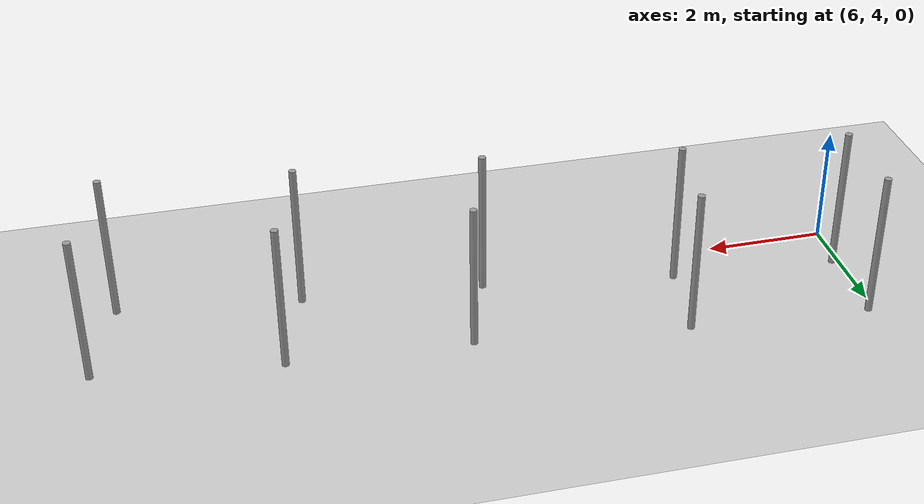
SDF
<sdf version="1.6">
 <world name="default">
  <light name="sun" type="directional">
   <pose>0 0 10 0 -0 0</pose>
   <diffuse>0.8 0.8 0.8 1</diffuse>
   <specular>0.1 0.1 0.1 1</specular>
   <attenuation>
    <range>1000</range>
    <constant>0.9</constant>
    <linear>0.01</linear>
    <quadratic>0.001</quadratic>
   </attenuation>
   <direction>-0.5 0.5 -1</direction>
  </light>
  <model name="ground_plane">
   <static>1</static>
   <link name="link">
    <collision name="collision">
     <geometry><plane><normal>0 0 1</normal><size>100 100</size></plane></geometry>
     <surface><friction><ode><mu>100</mu><mu2>50</mu2></ode></friction></surface>
    </collision>
    <visual name="visual">
     <cast_shadows>0</cast_shadows>
     <geometry><plane><normal>0 0 1</normal><size>100 100</size></plane></geometry>
     <material>
      <script><uri>file://media/materials/scripts/gazebo.material</uri><name>Gazebo/Grey</name></script>
     </material>
    </visual>
   </link>
  </model>
  <gravity>0 0 -9.8</gravity>
  <magnetic_field>6e-06 2.3e-05 -4.2e-05</magnetic_field>
  <atmosphere type="adiabatic"/>
  <physics name="default_physics" default="0" type="ode">
   <max_step_size>0.001</max_step_size>
   <real_time_factor>1</real_time_factor>
   <real_time_update_rate>1000</real_time_update_rate>
  </physics>
  <scene><ambient>0.4 0.4 0.4 1</ambient><background>0.7 0.7 0.7 1</background><shadows>1</shadows></scene>
  <spherical_coordinates>
   <surface_model>EARTH_WGS84</surface_model>
   <latitude_deg>0</latitude_deg>
   <longitude_deg>0</longitude_deg>
   <elevation>0</elevation>
   <heading_deg>0</heading_deg>
  </spherical_coordinates>
  <model name="pole_1">
   <link name="link_0">
    <inertial>
     <mass>0.0364582</mass>
     <inertia>
      <ixx>0.00312124</ixx>
      <ixy>0</ixy>
      <ixz>0</ixz>
      <iyy>0.00312124</iyy>
      <iyz>0</iyz>
      <izz>0.00016615</izz>
     </inertia>
    </inertial>
    <visual name="visual">
     <geometry><cylinder><radius>0.06</radius><length>2.5</length></cylinder></geometry>
     <material>
      <lighting>1</lighting>
      <script><uri>file://media/materials/scripts/gazebo.material</uri><name>Gazebo/Grey</name></script>
      <ambient>0.3 0.3 0.3 1</ambient>
      <diffuse>0.7 0.7 0.7 1</diffuse>
      <specular>0.01 0.01 0.01 1</specular>
      <emissive>0 0 0 1</emissive>
      <shader type="vertex"><normal_map>__default__</normal_map></shader>
     </material>
    </visual>
    <collision name="collision">
     <geometry><cylinder><radius>0.06</radius><length>2.5</length></cylinder></geometry>
     <surface>
      <friction>
       <ode><mu>1</mu><mu2>1</mu2><fdir1>0 0 0</fdir1><slip1>0</slip1><slip2>0</slip2></ode>
       <torsional>
        <coefficient>1</coefficient>
        <patch_radius>0</patch_radius>
        <surface_radius>0</surface_radius>
        <use_patch_radius>1</use_patch_radius>
        <ode><slip>0</slip></ode>
       </torsional>
      </friction>
      <bounce><restitution_coefficient>0</restitution_coefficient><threshold>1e+06</threshold></bounce>
      <contact>
       <collide_without_contact>0</collide_without_contact>
       <collide_without_contact_bitmask>1</collide_without_contact_bitmask>
       <collide_bitmask>1</collide_bitmask>
       <ode>
        <soft_cfm>0</soft_cfm>
        <soft_erp>0.2</soft_erp>
        <kp>1e+13</kp>
        <kd>1</kd>
        <max_vel>0.01</max_vel>
        <min_depth>0</min_depth>
       </ode>
       <bullet>
        <split_impulse>1</split_impulse>
        <split_impulse_penetration_threshold>-0.01</split_impulse_penetration_threshold>
        <soft_cfm>0</soft_cfm>
        <soft_erp>0.2</soft_erp>
        <kp>1e+13</kp>
        <kd>1</kd>
       </bullet>
      </contact>
     </surface>
    </collision>
   </link>
   <static>0</static>
   <pose>6.10679 4.85517 1.25 -1e-06 -1e-06 -0.039728</pose>
  </model>
  <model name="pole_2">
   <link name="link_0">
    <inertial>
     <mass>0.0364582</mass>
     <inertia>
      <ixx>0.00312124</ixx>
      <ixy>0</ixy>
      <ixz>0</ixz>
      <iyy>0.00312124</iyy>
      <iyz>0</iyz>
      <izz>0.00016615</izz>
     </inertia>
    </inertial>
    <visual name="visual">
     <geometry><cylinder><radius>0.06</radius><length>2.5</length></cylinder></geometry>
     <material>
      <lighting>1</lighting>
      <script><uri>file://media/materials/scripts/gazebo.material</uri><name>Gazebo/Grey</name></script>
      <ambient>0.3 0.3 0.3 1</ambient>
      <diffuse>0.7 0.7 0.7 1</diffuse>
      <specular>0.01 0.01 0.01 1</specular>
      <emissive>0 0 0 1</emissive>
      <shader type="vertex"><normal_map>__default__</normal_map></shader>
     </material>
    </visual>
    <collision name="collision">
     <geometry><cylinder><radius>0.06</radius><length>2.5</length></cylinder></geometry>
     <surface>
      <friction>
       <ode><mu>1</mu><mu2>1</mu2><fdir1>0 0 0</fdir1><slip1>0</slip1><slip2>0</slip2></ode>
       <torsional>
        <coefficient>1</coefficient>
        <patch_radius>0</patch_radius>
        <surface_radius>0</surface_radius>
        <use_patch_radius>1</use_patch_radius>
        <ode><slip>0</slip></ode>
       </torsional>
      </friction>
      <bounce><restitution_coefficient>0</restitution_coefficient><threshold>1e+06</threshold></bounce>
      <contact>
       <collide_without_contact>0</collide_without_contact>
       <collide_without_contact_bitmask>1</collide_without_contact_bitmask>
       <collide_bitmask>1</collide_bitmask>
       <ode>
        <soft_cfm>0</soft_cfm>
        <soft_erp>0.2</soft_erp>
        <kp>1e+13</kp>
        <kd>1</kd>
        <max_vel>0.01</max_vel>
        <min_depth>0</min_depth>
       </ode>
       <bullet>
        <split_impulse>1</split_impulse>
        <split_impulse_penetration_threshold>-0.01</split_impulse_penetration_threshold>
        <soft_cfm>0</soft_cfm>
        <soft_erp>0.2</soft_erp>
        <kp>1e+13</kp>
        <kd>1</kd>
       </bullet>
      </contact>
     </surface>
    </collision>
   </link>
   <static>0</static>
   <pose>6.10642 6.31821 1.25 -1e-06 1e-06 -0.046155</pose>
  </model>
  <model name="pole_5">
   <link name="link_0">
    <inertial>
     <mass>0.0364582</mass>
     <inertia>
      <ixx>0.00312124</ixx>
      <ixy>0</ixy>
      <ixz>0</ixz>
      <iyy>0.00312124</iyy>
      <iyz>0</iyz>
      <izz>0.00016615</izz>
     </inertia>
    </inertial>
    <visual name="visual">
     <geometry><cylinder><radius>0.06</radius><length>2.5</length></cylinder></geometry>
     <material>
      <lighting>1</lighting>
      <script><uri>file://media/materials/scripts/gazebo.material</uri><name>Gazebo/Grey</name></script>
      <ambient>0.3 0.3 0.3 1</ambient>
      <diffuse>0.7 0.7 0.7 1</diffuse>
      <specular>0.01 0.01 0.01 1</specular>
      <emissive>0 0 0 1</emissive>
      <shader type="vertex"><normal_map>__default__</normal_map></shader>
     </material>
    </visual>
    <collision name="collision">
     <geometry><cylinder><radius>0.06</radius><length>2.5</length></cylinder></geometry>
     <surface>
      <friction>
       <ode><mu>1</mu><mu2>1</mu2><fdir1>0 0 0</fdir1><slip1>0</slip1><slip2>0</slip2></ode>
       <torsional>
        <coefficient>1</coefficient>
        <patch_radius>0</patch_radius>
        <surface_radius>0</surface_radius>
        <use_patch_radius>1</use_patch_radius>
        <ode><slip>0</slip></ode>
       </torsional>
      </friction>
      <bounce><restitution_coefficient>0</restitution_coefficient><threshold>1e+06</threshold></bounce>
      <contact>
       <collide_without_contact>0</collide_without_contact>
       <collide_without_contact_bitmask>1</collide_without_contact_bitmask>
       <collide_bitmask>1</collide_bitmask>
       <ode>
        <soft_cfm>0</soft_cfm>
        <soft_erp>0.2</soft_erp>
        <kp>1e+13</kp>
        <kd>1</kd>
        <max_vel>0.01</max_vel>
        <min_depth>0</min_depth>
       </ode>
       <bullet>
        <split_impulse>1</split_impulse>
        <split_impulse_penetration_threshold>-0.01</split_impulse_penetration_threshold>
        <soft_cfm>0</soft_cfm>
        <soft_erp>0.2</soft_erp>
        <kp>1e+13</kp>
        <kd>1</kd>
       </bullet>
      </contact>
     </surface>
    </collision>
   </link>
   <static>0</static>
   <pose>8.90684 4.65536 1.24999 0 -1e-06 -0.039716</pose>
  </model>
  <model name="pole_6">
   <link name="link_0">
    <inertial>
     <mass>0.0364582</mass>
     <inertia>
      <ixx>0.00312124</ixx>
      <ixy>0</ixy>
      <ixz>0</ixz>
      <iyy>0.00312124</iyy>
      <iyz>0</iyz>
      <izz>0.00016615</izz>
     </inertia>
    </inertial>
    <visual name="visual">
     <geometry><cylinder><radius>0.06</radius><length>2.5</length></cylinder></geometry>
     <material>
      <lighting>1</lighting>
      <script><uri>file://media/materials/scripts/gazebo.material</uri><name>Gazebo/Grey</name></script>
      <ambient>0.3 0.3 0.3 1</ambient>
      <diffuse>0.7 0.7 0.7 1</diffuse>
      <specular>0.01 0.01 0.01 1</specular>
      <emissive>0 0 0 1</emissive>
      <shader type="vertex"><normal_map>__default__</normal_map></shader>
     </material>
    </visual>
    <collision name="collision">
     <geometry><cylinder><radius>0.06</radius><length>2.5</length></cylinder></geometry>
     <surface>
      <friction>
       <ode><mu>1</mu><mu2>1</mu2><fdir1>0 0 0</fdir1><slip1>0</slip1><slip2>0</slip2></ode>
       <torsional>
        <coefficient>1</coefficient>
        <patch_radius>0</patch_radius>
        <surface_radius>0</surface_radius>
        <use_patch_radius>1</use_patch_radius>
        <ode><slip>0</slip></ode>
       </torsional>
      </friction>
      <bounce><restitution_coefficient>0</restitution_coefficient><threshold>1e+06</threshold></bounce>
      <contact>
       <collide_without_contact>0</collide_without_contact>
       <collide_without_contact_bitmask>1</collide_without_contact_bitmask>
       <collide_bitmask>1</collide_bitmask>
       <ode>
        <soft_cfm>0</soft_cfm>
        <soft_erp>0.2</soft_erp>
        <kp>1e+13</kp>
        <kd>1</kd>
        <max_vel>0.01</max_vel>
        <min_depth>0</min_depth>
       </ode>
       <bullet>
        <split_impulse>1</split_impulse>
        <split_impulse_penetration_threshold>-0.01</split_impulse_penetration_threshold>
        <soft_cfm>0</soft_cfm>
        <soft_erp>0.2</soft_erp>
        <kp>1e+13</kp>
        <kd>1</kd>
       </bullet>
      </contact>
     </surface>
    </collision>
   </link>
   <static>0</static>
   <pose>9.10678 6.1006 1.25 -1e-06 1e-06 -0.05973</pose>
  </model>
  <model name="pole_9">
   <link name="link_0">
    <inertial>
     <mass>0.0364582</mass>
     <inertia>
      <ixx>0.00312124</ixx>
      <ixy>0</ixy>
      <ixz>0</ixz>
      <iyy>0.00312124</iyy>
      <iyz>0</iyz>
      <izz>0.00016615</izz>
     </inertia>
    </inertial>
    <visual name="visual">
     <geometry><cylinder><radius>0.06</radius><length>2.5</length></cylinder></geometry>
     <material>
      <lighting>1</lighting>
      <script><uri>file://media/materials/scripts/gazebo.material</uri><name>Gazebo/Grey</name></script>
      <ambient>0.3 0.3 0.3 1</ambient>
      <diffuse>0.7 0.7 0.7 1</diffuse>
      <specular>0.01 0.01 0.01 1</specular>
      <emissive>0 0 0 1</emissive>
      <shader type="vertex"><normal_map>__default__</normal_map></shader>
     </material>
    </visual>
    <collision name="collision">
     <geometry><cylinder><radius>0.06</radius><length>2.5</length></cylinder></geometry>
     <surface>
      <friction>
       <ode><mu>1</mu><mu2>1</mu2><fdir1>0 0 0</fdir1><slip1>0</slip1><slip2>0</slip2></ode>
       <torsional>
        <coefficient>1</coefficient>
        <patch_radius>0</patch_radius>
        <surface_radius>0</surface_radius>
        <use_patch_radius>1</use_patch_radius>
        <ode><slip>0</slip></ode>
       </torsional>
      </friction>
      <bounce><restitution_coefficient>0</restitution_coefficient><threshold>1e+06</threshold></bounce>
      <contact>
       <collide_without_contact>0</collide_without_contact>
       <collide_without_contact_bitmask>1</collide_without_contact_bitmask>
       <collide_bitmask>1</collide_bitmask>
       <ode>
        <soft_cfm>0</soft_cfm>
        <soft_erp>0.2</soft_erp>
        <kp>1e+13</kp>
        <kd>1</kd>
        <max_vel>0.01</max_vel>
        <min_depth>0</min_depth>
       </ode>
       <bullet>
        <split_impulse>1</split_impulse>
        <split_impulse_penetration_threshold>-0.01</split_impulse_penetration_threshold>
        <soft_cfm>0</soft_cfm>
        <soft_erp>0.2</soft_erp>
        <kp>1e+13</kp>
        <kd>1</kd>
       </bullet>
      </contact>
     </surface>
    </collision>
   </link>
   <static>0</static>
   <pose>12.1068 4.15512 1.24999 0 -1e-06 -0.037948</pose>
  </model>
  <model name="pole_10">
   <link name="link_0">
    <inertial>
     <mass>0.0364582</mass>
     <inertia>
      <ixx>0.00312124</ixx>
      <ixy>0</ixy>
      <ixz>0</ixz>
      <iyy>0.00312124</iyy>
      <iyz>0</iyz>
      <izz>0.00016615</izz>
     </inertia>
    </inertial>
    <visual name="visual">
     <geometry><cylinder><radius>0.06</radius><length>2.5</length></cylinder></geometry>
     <material>
      <lighting>1</lighting>
      <script><uri>file://media/materials/scripts/gazebo.material</uri><name>Gazebo/Grey</name></script>
      <ambient>0.3 0.3 0.3 1</ambient>
      <diffuse>0.7 0.7 0.7 1</diffuse>
      <specular>0.01 0.01 0.01 1</specular>
      <emissive>0 0 0 1</emissive>
      <shader type="vertex"><normal_map>__default__</normal_map></shader>
     </material>
    </visual>
    <collision name="collision">
     <geometry><cylinder><radius>0.06</radius><length>2.5</length></cylinder></geometry>
     <surface>
      <friction>
       <ode><mu>1</mu><mu2>1</mu2><fdir1>0 0 0</fdir1><slip1>0</slip1><slip2>0</slip2></ode>
       <torsional>
        <coefficient>1</coefficient>
        <patch_radius>0</patch_radius>
        <surface_radius>0</surface_radius>
        <use_patch_radius>1</use_patch_radius>
        <ode><slip>0</slip></ode>
       </torsional>
      </friction>
      <bounce><restitution_coefficient>0</restitution_coefficient><threshold>1e+06</threshold></bounce>
      <contact>
       <collide_without_contact>0</collide_without_contact>
       <collide_without_contact_bitmask>1</collide_without_contact_bitmask>
       <collide_bitmask>1</collide_bitmask>
       <ode>
        <soft_cfm>0</soft_cfm>
        <soft_erp>0.2</soft_erp>
        <kp>1e+13</kp>
        <kd>1</kd>
        <max_vel>0.01</max_vel>
        <min_depth>0</min_depth>
       </ode>
       <bullet>
        <split_impulse>1</split_impulse>
        <split_impulse_penetration_threshold>-0.01</split_impulse_penetration_threshold>
        <soft_cfm>0</soft_cfm>
        <soft_erp>0.2</soft_erp>
        <kp>1e+13</kp>
        <kd>1</kd>
       </bullet>
      </contact>
     </surface>
    </collision>
   </link>
   <static>0</static>
   <pose>12.6068 5.66824 1.24999 -0 -0 -0.035664</pose>
  </model>
  <model name="pole_17">
   <link name="link_0">
    <inertial>
     <mass>0.0364582</mass>
     <inertia>
      <ixx>0.00312124</ixx>
      <ixy>0</ixy>
      <ixz>0</ixz>
      <iyy>0.00312124</iyy>
      <iyz>0</iyz>
      <izz>0.00016615</izz>
     </inertia>
    </inertial>
    <visual name="visual">
     <geometry><cylinder><radius>0.06</radius><length>2.5</length></cylinder></geometry>
     <material>
      <lighting>1</lighting>
      <script><uri>file://media/materials/scripts/gazebo.material</uri><name>Gazebo/Grey</name></script>
      <ambient>0.3 0.3 0.3 1</ambient>
      <diffuse>0.7 0.7 0.7 1</diffuse>
      <specular>0.01 0.01 0.01 1</specular>
      <emissive>0 0 0 1</emissive>
      <shader type="vertex"><normal_map>__default__</normal_map></shader>
     </material>
    </visual>
    <collision name="collision">
     <geometry><cylinder><radius>0.06</radius><length>2.5</length></cylinder></geometry>
     <surface>
      <friction>
       <ode><mu>1</mu><mu2>1</mu2><fdir1>0 0 0</fdir1><slip1>0</slip1><slip2>0</slip2></ode>
       <torsional>
        <coefficient>1</coefficient>
        <patch_radius>0</patch_radius>
        <surface_radius>0</surface_radius>
        <use_patch_radius>1</use_patch_radius>
        <ode><slip>0</slip></ode>
       </torsional>
      </friction>
      <bounce><restitution_coefficient>0</restitution_coefficient><threshold>1e+06</threshold></bounce>
      <contact>
       <collide_without_contact>0</collide_without_contact>
       <collide_without_contact_bitmask>1</collide_without_contact_bitmask>
       <collide_bitmask>1</collide_bitmask>
       <ode>
        <soft_cfm>0</soft_cfm>
        <soft_erp>0.2</soft_erp>
        <kp>1e+13</kp>
        <kd>1</kd>
        <max_vel>0.01</max_vel>
        <min_depth>0</min_depth>
       </ode>
       <bullet>
        <split_impulse>1</split_impulse>
        <split_impulse_penetration_threshold>-0.01</split_impulse_penetration_threshold>
        <soft_cfm>0</soft_cfm>
        <soft_erp>0.2</soft_erp>
        <kp>1e+13</kp>
        <kd>1</kd>
       </bullet>
      </contact>
     </surface>
    </collision>
   </link>
   <static>0</static>
   <pose>15.1067 3.8554 1.24999 -1e-06 1e-06 -0.033996</pose>
  </model>
  <model name="pole_18">
   <link name="link_0">
    <inertial>
     <mass>0.0364582</mass>
     <inertia>
      <ixx>0.00312124</ixx>
      <ixy>0</ixy>
      <ixz>0</ixz>
      <iyy>0.00312124</iyy>
      <iyz>0</iyz>
      <izz>0.00016615</izz>
     </inertia>
    </inertial>
    <visual name="visual">
     <geometry><cylinder><radius>0.06</radius><length>2.5</length></cylinder></geometry>
     <material>
      <lighting>1</lighting>
      <script><uri>file://media/materials/scripts/gazebo.material</uri><name>Gazebo/Grey</name></script>
      <ambient>0.3 0.3 0.3 1</ambient>
      <diffuse>0.7 0.7 0.7 1</diffuse>
      <specular>0.01 0.01 0.01 1</specular>
      <emissive>0 0 0 1</emissive>
      <shader type="vertex"><normal_map>__default__</normal_map></shader>
     </material>
    </visual>
    <collision name="collision">
     <geometry><cylinder><radius>0.06</radius><length>2.5</length></cylinder></geometry>
     <surface>
      <friction>
       <ode><mu>1</mu><mu2>1</mu2><fdir1>0 0 0</fdir1><slip1>0</slip1><slip2>0</slip2></ode>
       <torsional>
        <coefficient>1</coefficient>
        <patch_radius>0</patch_radius>
        <surface_radius>0</surface_radius>
        <use_patch_radius>1</use_patch_radius>
        <ode><slip>0</slip></ode>
       </torsional>
      </friction>
      <bounce><restitution_coefficient>0</restitution_coefficient><threshold>1e+06</threshold></bounce>
      <contact>
       <collide_without_contact>0</collide_without_contact>
       <collide_without_contact_bitmask>1</collide_without_contact_bitmask>
       <collide_bitmask>1</collide_bitmask>
       <ode>
        <soft_cfm>0</soft_cfm>
        <soft_erp>0.2</soft_erp>
        <kp>1e+13</kp>
        <kd>1</kd>
        <max_vel>0.01</max_vel>
        <min_depth>0</min_depth>
       </ode>
       <bullet>
        <split_impulse>1</split_impulse>
        <split_impulse_penetration_threshold>-0.01</split_impulse_penetration_threshold>
        <soft_cfm>0</soft_cfm>
        <soft_erp>0.2</soft_erp>
        <kp>1e+13</kp>
        <kd>1</kd>
       </bullet>
      </contact>
     </surface>
    </collision>
   </link>
   <static>0</static>
   <pose>18.1066 3.45531 1.25 -1e-06 3e-06 -0.037996</pose>
  </model>
  <model name="pole_20">
   <link name="link_0">
    <inertial>
     <mass>0.0364582</mass>
     <inertia>
      <ixx>0.00312124</ixx>
      <ixy>0</ixy>
      <ixz>0</ixz>
      <iyy>0.00312124</iyy>
      <iyz>0</iyz>
      <izz>0.00016615</izz>
     </inertia>
    </inertial>
    <visual name="visual">
     <geometry><cylinder><radius>0.06</radius><length>2.5</length></cylinder></geometry>
     <material>
      <lighting>1</lighting>
      <script><uri>file://media/materials/scripts/gazebo.material</uri><name>Gazebo/Grey</name></script>
      <ambient>0.3 0.3 0.3 1</ambient>
      <diffuse>0.7 0.7 0.7 1</diffuse>
      <specular>0.01 0.01 0.01 1</specular>
      <emissive>0 0 0 1</emissive>
      <shader type="vertex"><normal_map>__default__</normal_map></shader>
     </material>
    </visual>
    <collision name="collision">
     <geometry><cylinder><radius>0.06</radius><length>2.5</length></cylinder></geometry>
     <surface>
      <friction>
       <ode><mu>1</mu><mu2>1</mu2><fdir1>0 0 0</fdir1><slip1>0</slip1><slip2>0</slip2></ode>
       <torsional>
        <coefficient>1</coefficient>
        <patch_radius>0</patch_radius>
        <surface_radius>0</surface_radius>
        <use_patch_radius>1</use_patch_radius>
        <ode><slip>0</slip></ode>
       </torsional>
      </friction>
      <bounce><restitution_coefficient>0</restitution_coefficient><threshold>1e+06</threshold></bounce>
      <contact>
       <collide_without_contact>0</collide_without_contact>
       <collide_without_contact_bitmask>1</collide_without_contact_bitmask>
       <collide_bitmask>1</collide_bitmask>
       <ode>
        <soft_cfm>0</soft_cfm>
        <soft_erp>0.2</soft_erp>
        <kp>1e+13</kp>
        <kd>1</kd>
        <max_vel>0.01</max_vel>
        <min_depth>0</min_depth>
       </ode>
       <bullet>
        <split_impulse>1</split_impulse>
        <split_impulse_penetration_threshold>-0.01</split_impulse_penetration_threshold>
        <soft_cfm>0</soft_cfm>
        <soft_erp>0.2</soft_erp>
        <kp>1e+13</kp>
        <kd>1</kd>
       </bullet>
      </contact>
     </surface>
    </collision>
   </link>
   <static>0</static>
   <pose>15.6067 5.51833 1.24999 0 -1e-06 -0.035336</pose>
  </model>
  <model name="pole_21">
   <link name="link_0">
    <inertial>
     <mass>0.0364582</mass>
     <inertia>
      <ixx>0.00312124</ixx>
      <ixy>0</ixy>
      <ixz>0</ixz>
      <iyy>0.00312124</iyy>
      <iyz>0</iyz>
      <izz>0.00016615</izz>
     </inertia>
    </inertial>
    <visual name="visual">
     <geometry><cylinder><radius>0.06</radius><length>2.5</length></cylinder></geometry>
     <material>
      <lighting>1</lighting>
      <script><uri>file://media/materials/scripts/gazebo.material</uri><name>Gazebo/Grey</name></script>
      <ambient>0.3 0.3 0.3 1</ambient>
      <diffuse>0.7 0.7 0.7 1</diffuse>
      <specular>0.01 0.01 0.01 1</specular>
      <emissive>0 0 0 1</emissive>
      <shader type="vertex"><normal_map>__default__</normal_map></shader>
     </material>
    </visual>
    <collision name="collision">
     <geometry><cylinder><radius>0.06</radius><length>2.5</length></cylinder></geometry>
     <surface>
      <friction>
       <ode><mu>1</mu><mu2>1</mu2><fdir1>0 0 0</fdir1><slip1>0</slip1><slip2>0</slip2></ode>
       <torsional>
        <coefficient>1</coefficient>
        <patch_radius>0</patch_radius>
        <surface_radius>0</surface_radius>
        <use_patch_radius>1</use_patch_radius>
        <ode><slip>0</slip></ode>
       </torsional>
      </friction>
      <bounce><restitution_coefficient>0</restitution_coefficient><threshold>1e+06</threshold></bounce>
      <contact>
       <collide_without_contact>0</collide_without_contact>
       <collide_without_contact_bitmask>1</collide_without_contact_bitmask>
       <collide_bitmask>1</collide_bitmask>
       <ode>
        <soft_cfm>0</soft_cfm>
        <soft_erp>0.2</soft_erp>
        <kp>1e+13</kp>
        <kd>1</kd>
        <max_vel>0.01</max_vel>
        <min_depth>0</min_depth>
       </ode>
       <bullet>
        <split_impulse>1</split_impulse>
        <split_impulse_penetration_threshold>-0.01</split_impulse_penetration_threshold>
        <soft_cfm>0</soft_cfm>
        <soft_erp>0.2</soft_erp>
        <kp>1e+13</kp>
        <kd>1</kd>
       </bullet>
      </contact>
     </surface>
    </collision>
   </link>
   <static>0</static>
   <pose>18.6067 5.13037 1.25 1e-06 -4e-06 -0.03508</pose>
  </model>
 </world>
</sdf>
